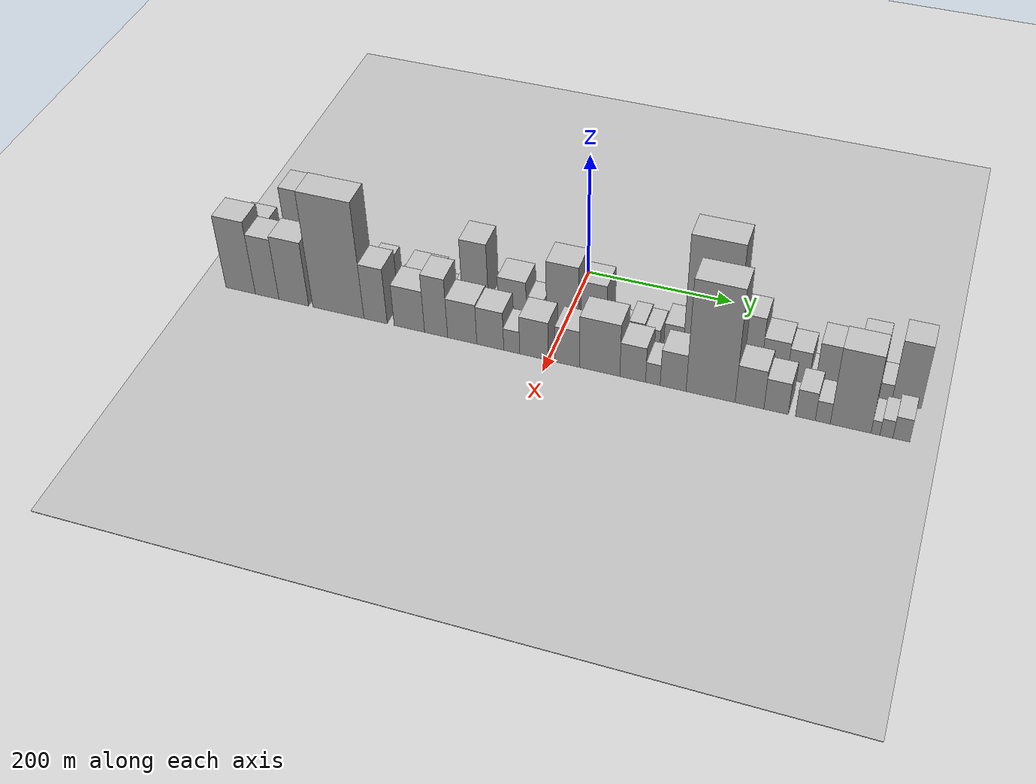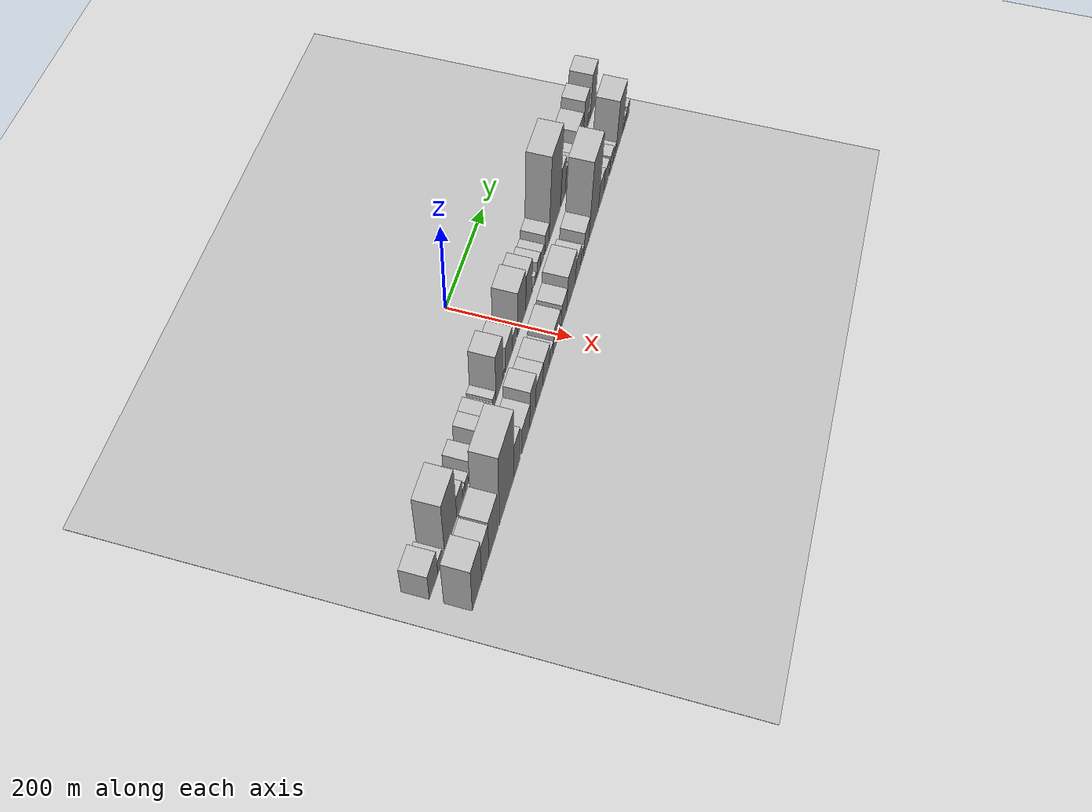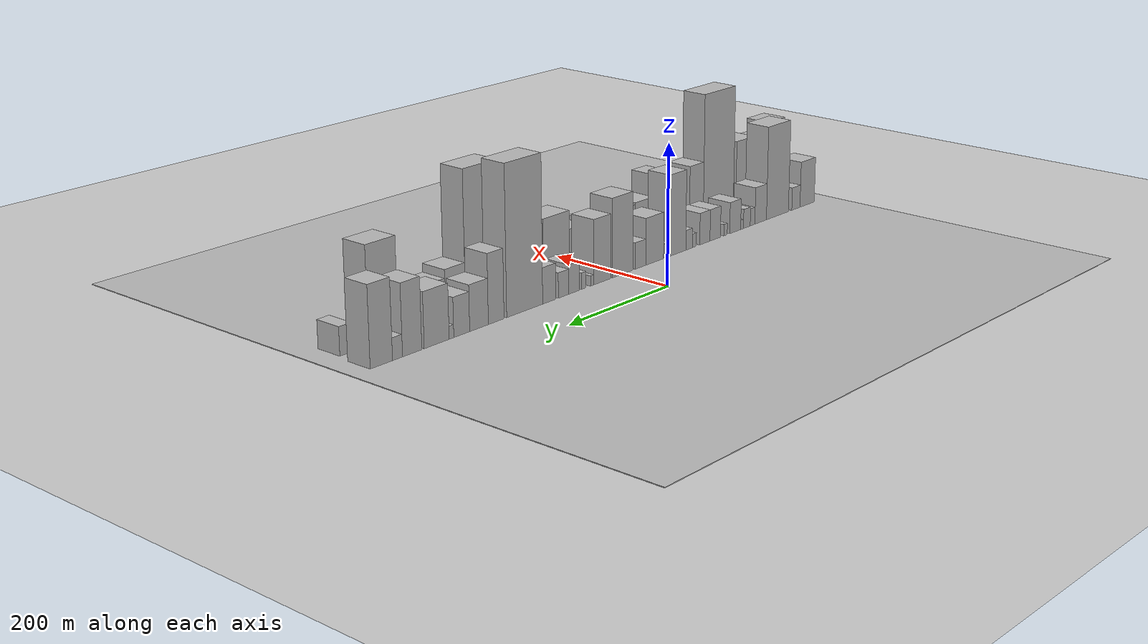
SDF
<sdf version="1.6">
 <world name="default">
  <include><name>ground_plane_1</name><uri>model://HANNAS_ground_plane</uri></include>
  <include>
   <name>ground_plane_2</name>
   <uri>model://HANNAS_ground_plane</uri>
   <pose>100 0 0  0 0 0</pose>
  </include>
  <model name="building_1">
   <static>1</static>
   <pose>100.0000 -440.9247 0 0.000000 0.000000 0.000000</pose>
   <link name="link">
    <pose>0 0 36.00 0 0 0</pose>
    <collision name="collision"><geometry><box><size>40.0000 38.1506 72.0000</size></box></geometry></collision>
    <visual name="visual">
     <cast_shadows>0</cast_shadows>
     <geometry><box><size>40.0000 38.1506 72.0000</size></box></geometry>
     <material>
      <script>
       <uri>model://HANNAS_wall/materials/scripts</uri>
       <uri>model://HANNAS_wall/materials/textures</uri>
       <name>vrc/HANNAS_wall</name>
      </script>
     </material>
    </visual>
   </link>
  </model>
  <model name="building_2">
   <static>1</static>
   <pose>100.0000 -411.0806 0 0.000000 0.000000 0.000000</pose>
   <link name="link">
    <pose>0 0 18.00 0 0 0</pose>
    <collision name="collision"><geometry><box><size>40.0000 21.5376 36.0000</size></box></geometry></collision>
    <visual name="visual">
     <cast_shadows>0</cast_shadows>
     <geometry><box><size>40.0000 21.5376 36.0000</size></box></geometry>
     <material>
      <script>
       <uri>model://HANNAS_wall/materials/scripts</uri>
       <uri>model://HANNAS_wall/materials/textures</uri>
       <name>vrc/HANNAS_wall</name>
      </script>
     </material>
    </visual>
   </link>
  </model>
  <model name="building_3">
   <static>1</static>
   <pose>100.0000 -363.0573 0 0.000000 0.000000 0.000000</pose>
   <link name="link">
    <pose>0 0 72.00 0 0 0</pose>
    <collision name="collision"><geometry><box><size>40.0000 56.5090 144.0000</size></box></geometry></collision>
    <visual name="visual">
     <cast_shadows>0</cast_shadows>
     <geometry><box><size>40.0000 56.5090 144.0000</size></box></geometry>
     <material>
      <script>
       <uri>model://HANNAS_wall/materials/scripts</uri>
       <uri>model://HANNAS_wall/materials/textures</uri>
       <name>vrc/HANNAS_wall</name>
      </script>
     </material>
    </visual>
   </link>
  </model>
  <model name="building_4">
   <static>1</static>
   <pose>100.0000 -320.2638 0 0.000000 0.000000 0.000000</pose>
   <link name="link">
    <pose>0 0 28.50 0 0 0</pose>
    <collision name="collision"><geometry><box><size>40.0000 29.0781 57.0000</size></box></geometry></collision>
    <visual name="visual">
     <cast_shadows>0</cast_shadows>
     <geometry><box><size>40.0000 29.0781 57.0000</size></box></geometry>
     <material>
      <script>
       <uri>model://HANNAS_wall/materials/scripts</uri>
       <uri>model://HANNAS_wall/materials/textures</uri>
       <name>vrc/HANNAS_wall</name>
      </script>
     </material>
    </visual>
   </link>
  </model>
  <model name="building_5">
   <static>1</static>
   <pose>100.0000 -299.8570 0 0.000000 0.000000 0.000000</pose>
   <link name="link">
    <pose>0 0 13.50 0 0 0</pose>
    <collision name="collision"><geometry><box><size>40.0000 11.7355 27.0000</size></box></geometry></collision>
    <visual name="visual">
     <cast_shadows>0</cast_shadows>
     <geometry><box><size>40.0000 11.7355 27.0000</size></box></geometry>
     <material>
      <script>
       <uri>model://HANNAS_wall/materials/scripts</uri>
       <uri>model://HANNAS_wall/materials/textures</uri>
       <name>vrc/HANNAS_wall</name>
      </script>
     </material>
    </visual>
   </link>
  </model>
  <model name="building_6">
   <static>1</static>
   <pose>100.0000 -285.6848 0 0.000000 0.000000 0.000000</pose>
   <link name="link">
    <pose>0 0 15.00 0 0 0</pose>
    <collision name="collision"><geometry><box><size>40.0000 16.6089 30.0000</size></box></geometry></collision>
    <visual name="visual">
     <cast_shadows>0</cast_shadows>
     <geometry><box><size>40.0000 16.6089 30.0000</size></box></geometry>
     <material>
      <script>
       <uri>model://HANNAS_wall/materials/scripts</uri>
       <uri>model://HANNAS_wall/materials/textures</uri>
       <name>vrc/HANNAS_wall</name>
      </script>
     </material>
    </visual>
   </link>
  </model>
  <model name="building_7">
   <static>1</static>
   <pose>100.0000 -273.8591 0 0.000000 0.000000 0.000000</pose>
   <link name="link">
    <pose>0 0 7.50 0 0 0</pose>
    <collision name="collision"><geometry><box><size>40.0000 7.0425 15.0000</size></box></geometry></collision>
    <visual name="visual">
     <cast_shadows>0</cast_shadows>
     <geometry><box><size>40.0000 7.0425 15.0000</size></box></geometry>
     <material>
      <script>
       <uri>model://HANNAS_wall/materials/scripts</uri>
       <uri>model://HANNAS_wall/materials/textures</uri>
       <name>vrc/HANNAS_wall</name>
      </script>
     </material>
    </visual>
   </link>
  </model>
  <model name="building_8">
   <static>1</static>
   <pose>100.0000 -257.0181 0 0.000000 0.000000 0.000000</pose>
   <link name="link">
    <pose>0 0 24.00 0 0 0</pose>
    <collision name="collision"><geometry><box><size>40.0000 26.6394 48.0000</size></box></geometry></collision>
    <visual name="visual">
     <cast_shadows>0</cast_shadows>
     <geometry><box><size>40.0000 26.6394 48.0000</size></box></geometry>
     <material>
      <script>
       <uri>model://HANNAS_wall/materials/scripts</uri>
       <uri>model://HANNAS_wall/materials/textures</uri>
       <name>vrc/HANNAS_wall</name>
      </script>
     </material>
    </visual>
   </link>
  </model>
  <model name="building_9">
   <static>1</static>
   <pose>100.0000 -233.5520 0 0.000000 0.000000 0.000000</pose>
   <link name="link">
    <pose>0 0 9.00 0 0 0</pose>
    <collision name="collision"><geometry><box><size>40.0000 8.2930 18.0000</size></box></geometry></collision>
    <visual name="visual">
     <cast_shadows>0</cast_shadows>
     <geometry><box><size>40.0000 8.2930 18.0000</size></box></geometry>
     <material>
      <script>
       <uri>model://HANNAS_wall/materials/scripts</uri>
       <uri>model://HANNAS_wall/materials/textures</uri>
       <name>vrc/HANNAS_wall</name>
      </script>
     </material>
    </visual>
   </link>
  </model>
  <model name="building_10">
   <static>1</static>
   <pose>100.0000 -208.8755 0 0.000000 0.000000 0.000000</pose>
   <link name="link">
    <pose>0 0 24.00 0 0 0</pose>
    <collision name="collision"><geometry><box><size>40.0000 25.0599 48.0000</size></box></geometry></collision>
    <visual name="visual">
     <cast_shadows>0</cast_shadows>
     <geometry><box><size>40.0000 25.0599 48.0000</size></box></geometry>
     <material>
      <script>
       <uri>model://HANNAS_wall/materials/scripts</uri>
       <uri>model://HANNAS_wall/materials/textures</uri>
       <name>vrc/HANNAS_wall</name>
      </script>
     </material>
    </visual>
   </link>
  </model>
  <model name="building_11">
   <static>1</static>
   <pose>100.0000 -184.3408 0 0.000000 0.000000 0.000000</pose>
   <link name="link">
    <pose>0 0 24.00 0 0 0</pose>
    <collision name="collision"><geometry><box><size>40.0000 24.0095 48.0000</size></box></geometry></collision>
    <visual name="visual">
     <cast_shadows>0</cast_shadows>
     <geometry><box><size>40.0000 24.0095 48.0000</size></box></geometry>
     <material>
      <script>
       <uri>model://HANNAS_wall/materials/scripts</uri>
       <uri>model://HANNAS_wall/materials/textures</uri>
       <name>vrc/HANNAS_wall</name>
      </script>
     </material>
    </visual>
   </link>
  </model>
  <model name="building_12">
   <static>1</static>
   <pose>100.0000 -159.7150 0 0.000000 0.000000 0.000000</pose>
   <link name="link">
    <pose>0 0 10.50 0 0 0</pose>
    <collision name="collision"><geometry><box><size>40.0000 9.2420 21.0000</size></box></geometry></collision>
    <visual name="visual">
     <cast_shadows>0</cast_shadows>
     <geometry><box><size>40.0000 9.2420 21.0000</size></box></geometry>
     <material>
      <script>
       <uri>model://HANNAS_wall/materials/scripts</uri>
       <uri>model://HANNAS_wall/materials/textures</uri>
       <name>vrc/HANNAS_wall</name>
      </script>
     </material>
    </visual>
   </link>
  </model>
  <model name="building_13">
   <static>1</static>
   <pose>100.0000 -147.5002 0 0.000000 0.000000 0.000000</pose>
   <link name="link">
    <pose>0 0 15.00 0 0 0</pose>
    <collision name="collision"><geometry><box><size>40.0000 15.1876 30.0000</size></box></geometry></collision>
    <visual name="visual">
     <cast_shadows>0</cast_shadows>
     <geometry><box><size>40.0000 15.1876 30.0000</size></box></geometry>
     <material>
      <script>
       <uri>model://HANNAS_wall/materials/scripts</uri>
       <uri>model://HANNAS_wall/materials/textures</uri>
       <name>vrc/HANNAS_wall</name>
      </script>
     </material>
    </visual>
   </link>
  </model>
  <model name="building_14">
   <static>1</static>
   <pose>100.0000 -121.4377 0 0.000000 0.000000 0.000000</pose>
   <link name="link">
    <pose>0 0 60.00 0 0 0</pose>
    <collision name="collision"><geometry><box><size>40.0000 36.9374 120.0000</size></box></geometry></collision>
    <visual name="visual">
     <cast_shadows>0</cast_shadows>
     <geometry><box><size>40.0000 36.9374 120.0000</size></box></geometry>
     <material>
      <script>
       <uri>model://HANNAS_wall/materials/scripts</uri>
       <uri>model://HANNAS_wall/materials/textures</uri>
       <name>vrc/HANNAS_wall</name>
      </script>
     </material>
    </visual>
   </link>
  </model>
  <model name="building_15">
   <static>1</static>
   <pose>100.0000 -98.6666 0 0.000000 0.000000 0.000000</pose>
   <link name="link">
    <pose>0 0 10.50 0 0 0</pose>
    <collision name="collision"><geometry><box><size>40.0000 8.6048 21.0000</size></box></geometry></collision>
    <visual name="visual">
     <cast_shadows>0</cast_shadows>
     <geometry><box><size>40.0000 8.6048 21.0000</size></box></geometry>
     <material>
      <script>
       <uri>model://HANNAS_wall/materials/scripts</uri>
       <uri>model://HANNAS_wall/materials/textures</uri>
       <name>vrc/HANNAS_wall</name>
      </script>
     </material>
    </visual>
   </link>
  </model>
  <model name="building_16">
   <static>1</static>
   <pose>100.0000 -69.6696 0 0.000000 0.000000 0.000000</pose>
   <link name="link">
    <pose>0 0 34.50 0 0 0</pose>
    <collision name="collision"><geometry><box><size>40.0000 39.3892 69.0000</size></box></geometry></collision>
    <visual name="visual">
     <cast_shadows>0</cast_shadows>
     <geometry><box><size>40.0000 39.3892 69.0000</size></box></geometry>
     <material>
      <script>
       <uri>model://HANNAS_wall/materials/scripts</uri>
       <uri>model://HANNAS_wall/materials/textures</uri>
       <name>vrc/HANNAS_wall</name>
      </script>
     </material>
    </visual>
   </link>
  </model>
  <model name="building_17">
   <static>1</static>
   <pose>100.0000 -38.5593 0 0.000000 0.000000 0.000000</pose>
   <link name="link">
    <pose>0 0 19.50 0 0 0</pose>
    <collision name="collision"><geometry><box><size>40.0000 22.8314 39.0000</size></box></geometry></collision>
    <visual name="visual">
     <cast_shadows>0</cast_shadows>
     <geometry><box><size>40.0000 22.8314 39.0000</size></box></geometry>
     <material>
      <script>
       <uri>model://HANNAS_wall/materials/scripts</uri>
       <uri>model://HANNAS_wall/materials/textures</uri>
       <name>vrc/HANNAS_wall</name>
      </script>
     </material>
    </visual>
   </link>
  </model>
  <model name="building_18">
   <static>1</static>
   <pose>100.0000 -0.0419 0 0.000000 0.000000 0.000000</pose>
   <link name="link">
    <pose>0 0 57.00 0 0 0</pose>
    <collision name="collision"><geometry><box><size>40.0000 44.2033 114.0000</size></box></geometry></collision>
    <visual name="visual">
     <cast_shadows>0</cast_shadows>
     <geometry><box><size>40.0000 44.2033 114.0000</size></box></geometry>
     <material>
      <script>
       <uri>model://HANNAS_wall/materials/scripts</uri>
       <uri>model://HANNAS_wall/materials/textures</uri>
       <name>vrc/HANNAS_wall</name>
      </script>
     </material>
    </visual>
   </link>
  </model>
  <model name="building_19">
   <static>1</static>
   <pose>100.0000 42.6761 0 0.000000 0.000000 0.000000</pose>
   <link name="link">
    <pose>0 0 46.50 0 0 0</pose>
    <collision name="collision"><geometry><box><size>40.0000 35.2327 93.0000</size></box></geometry></collision>
    <visual name="visual">
     <cast_shadows>0</cast_shadows>
     <geometry><box><size>40.0000 35.2327 93.0000</size></box></geometry>
     <material>
      <script>
       <uri>model://HANNAS_wall/materials/scripts</uri>
       <uri>model://HANNAS_wall/materials/textures</uri>
       <name>vrc/HANNAS_wall</name>
      </script>
     </material>
    </visual>
   </link>
  </model>
  <model name="building_20">
   <static>1</static>
   <pose>100.0000 63.8272 0 0.000000 0.000000 0.000000</pose>
   <link name="link">
    <pose>0 0 7.50 0 0 0</pose>
    <collision name="collision"><geometry><box><size>40.0000 7.0696 15.0000</size></box></geometry></collision>
    <visual name="visual">
     <cast_shadows>0</cast_shadows>
     <geometry><box><size>40.0000 7.0696 15.0000</size></box></geometry>
     <material>
      <script>
       <uri>model://HANNAS_wall/materials/scripts</uri>
       <uri>model://HANNAS_wall/materials/textures</uri>
       <name>vrc/HANNAS_wall</name>
      </script>
     </material>
    </visual>
   </link>
  </model>
  <model name="building_21">
   <static>1</static>
   <pose>100.0000 81.3237 0 0.000000 0.000000 0.000000</pose>
   <link name="link">
    <pose>0 0 12.00 0 0 0</pose>
    <collision name="collision"><geometry><box><size>40.0000 9.9235 24.0000</size></box></geometry></collision>
    <visual name="visual">
     <cast_shadows>0</cast_shadows>
     <geometry><box><size>40.0000 9.9235 24.0000</size></box></geometry>
     <material>
      <script>
       <uri>model://HANNAS_wall/materials/scripts</uri>
       <uri>model://HANNAS_wall/materials/textures</uri>
       <name>vrc/HANNAS_wall</name>
      </script>
     </material>
    </visual>
   </link>
  </model>
  <model name="building_22">
   <static>1</static>
   <pose>100.0000 100.9918 0 0.000000 0.000000 0.000000</pose>
   <link name="link">
    <pose>0 0 21.00 0 0 0</pose>
    <collision name="collision"><geometry><box><size>40.0000 21.4125 42.0000</size></box></geometry></collision>
    <visual name="visual">
     <cast_shadows>0</cast_shadows>
     <geometry><box><size>40.0000 21.4125 42.0000</size></box></geometry>
     <material>
      <script>
       <uri>model://HANNAS_wall/materials/scripts</uri>
       <uri>model://HANNAS_wall/materials/textures</uri>
       <name>vrc/HANNAS_wall</name>
      </script>
     </material>
    </visual>
   </link>
  </model>
  <model name="building_23">
   <static>1</static>
   <pose>100.0000 122.0115 0 0.000000 0.000000 0.000000</pose>
   <link name="link">
    <pose>0 0 18.00 0 0 0</pose>
    <collision name="collision"><geometry><box><size>40.0000 20.6270 36.0000</size></box></geometry></collision>
    <visual name="visual">
     <cast_shadows>0</cast_shadows>
     <geometry><box><size>40.0000 20.6270 36.0000</size></box></geometry>
     <material>
      <script>
       <uri>model://HANNAS_wall/materials/scripts</uri>
       <uri>model://HANNAS_wall/materials/textures</uri>
       <name>vrc/HANNAS_wall</name>
      </script>
     </material>
    </visual>
   </link>
  </model>
  <model name="building_24">
   <static>1</static>
   <pose>100.0000 150.2612 0 0.000000 0.000000 0.000000</pose>
   <link name="link">
    <pose>0 0 25.50 0 0 0</pose>
    <collision name="collision"><geometry><box><size>40.0000 25.8724 51.0000</size></box></geometry></collision>
    <visual name="visual">
     <cast_shadows>0</cast_shadows>
     <geometry><box><size>40.0000 25.8724 51.0000</size></box></geometry>
     <material>
      <script>
       <uri>model://HANNAS_wall/materials/scripts</uri>
       <uri>model://HANNAS_wall/materials/textures</uri>
       <name>vrc/HANNAS_wall</name>
      </script>
     </material>
    </visual>
   </link>
  </model>
  <model name="building_25">
   <static>1</static>
   <pose>100.0000 197.5591 0 0.000000 0.000000 0.000000</pose>
   <link name="link">
    <pose>0 0 103.50 0 0 0</pose>
    <collision name="collision"><geometry><box><size>40.0000 68.7232 207.0000</size></box></geometry></collision>
    <visual name="visual">
     <cast_shadows>0</cast_shadows>
     <geometry><box><size>40.0000 68.7232 207.0000</size></box></geometry>
     <material>
      <script>
       <uri>model://HANNAS_wall/materials/scripts</uri>
       <uri>model://HANNAS_wall/materials/textures</uri>
       <name>vrc/HANNAS_wall</name>
      </script>
     </material>
    </visual>
   </link>
  </model>
  <model name="building_26">
   <static>1</static>
   <pose>100.0000 251.4373 0 0.000000 0.000000 0.000000</pose>
   <link name="link">
    <pose>0 0 48.00 0 0 0</pose>
    <collision name="collision"><geometry><box><size>40.0000 29.0332 96.0000</size></box></geometry></collision>
    <visual name="visual">
     <cast_shadows>0</cast_shadows>
     <geometry><box><size>40.0000 29.0332 96.0000</size></box></geometry>
     <material>
      <script>
       <uri>model://HANNAS_wall/materials/scripts</uri>
       <uri>model://HANNAS_wall/materials/textures</uri>
       <name>vrc/HANNAS_wall</name>
      </script>
     </material>
    </visual>
   </link>
  </model>
  <model name="building_27">
   <static>1</static>
   <pose>100.0000 282.9380 0 0.000000 0.000000 0.000000</pose>
   <link name="link">
    <pose>0 0 31.50 0 0 0</pose>
    <collision name="collision"><geometry><box><size>40.0000 33.9682 63.0000</size></box></geometry></collision>
    <visual name="visual">
     <cast_shadows>0</cast_shadows>
     <geometry><box><size>40.0000 33.9682 63.0000</size></box></geometry>
     <material>
      <script>
       <uri>model://HANNAS_wall/materials/scripts</uri>
       <uri>model://HANNAS_wall/materials/textures</uri>
       <name>vrc/HANNAS_wall</name>
      </script>
     </material>
    </visual>
   </link>
  </model>
  <model name="building_28">
   <static>1</static>
   <pose>100.0000 314.1191 0 0.000000 0.000000 0.000000</pose>
   <link name="link">
    <pose>0 0 27.00 0 0 0</pose>
    <collision name="collision"><geometry><box><size>40.0000 28.3941 54.0000</size></box></geometry></collision>
    <visual name="visual">
     <cast_shadows>0</cast_shadows>
     <geometry><box><size>40.0000 28.3941 54.0000</size></box></geometry>
     <material>
      <script>
       <uri>model://HANNAS_wall/materials/scripts</uri>
       <uri>model://HANNAS_wall/materials/textures</uri>
       <name>vrc/HANNAS_wall</name>
      </script>
     </material>
    </visual>
   </link>
  </model>
  <model name="building_29">
   <static>1</static>
   <pose>100.0000 332.3941 0 0.000000 0.000000 0.000000</pose>
   <link name="link">
    <pose>0 0 9.00 0 0 0</pose>
    <collision name="collision"><geometry><box><size>40.0000 8.1560 18.0000</size></box></geometry></collision>
    <visual name="visual">
     <cast_shadows>0</cast_shadows>
     <geometry><box><size>40.0000 8.1560 18.0000</size></box></geometry>
     <material>
      <script>
       <uri>model://HANNAS_wall/materials/scripts</uri>
       <uri>model://HANNAS_wall/materials/textures</uri>
       <name>vrc/HANNAS_wall</name>
      </script>
     </material>
    </visual>
   </link>
  </model>
  <model name="building_30">
   <static>1</static>
   <pose>100.0000 358.2332 0 0.000000 0.000000 0.000000</pose>
   <link name="link">
    <pose>0 0 37.50 0 0 0</pose>
    <collision name="collision"><geometry><box><size>40.0000 43.5221 75.0000</size></box></geometry></collision>
    <visual name="visual">
     <cast_shadows>0</cast_shadows>
     <geometry><box><size>40.0000 43.5221 75.0000</size></box></geometry>
     <material>
      <script>
       <uri>model://HANNAS_wall/materials/scripts</uri>
       <uri>model://HANNAS_wall/materials/textures</uri>
       <name>vrc/HANNAS_wall</name>
      </script>
     </material>
    </visual>
   </link>
  </model>
  <model name="building_31">
   <static>1</static>
   <pose>100.0000 400.3645 0 0.000000 0.000000 0.000000</pose>
   <link name="link">
    <pose>0 0 48.00 0 0 0</pose>
    <collision name="collision"><geometry><box><size>40.0000 32.7405 96.0000</size></box></geometry></collision>
    <visual name="visual">
     <cast_shadows>0</cast_shadows>
     <geometry><box><size>40.0000 32.7405 96.0000</size></box></geometry>
     <material>
      <script>
       <uri>model://HANNAS_wall/materials/scripts</uri>
       <uri>model://HANNAS_wall/materials/textures</uri>
       <name>vrc/HANNAS_wall</name>
      </script>
     </material>
    </visual>
   </link>
  </model>
  <model name="building_32">
   <static>1</static>
   <pose>100.0000 425.0963 0 0.000000 0.000000 0.000000</pose>
   <link name="link">
    <pose>0 0 15.00 0 0 0</pose>
    <collision name="collision"><geometry><box><size>40.0000 16.7232 30.0000</size></box></geometry></collision>
    <visual name="visual">
     <cast_shadows>0</cast_shadows>
     <geometry><box><size>40.0000 16.7232 30.0000</size></box></geometry>
     <material>
      <script>
       <uri>model://HANNAS_wall/materials/scripts</uri>
       <uri>model://HANNAS_wall/materials/textures</uri>
       <name>vrc/HANNAS_wall</name>
      </script>
     </material>
    </visual>
   </link>
  </model>
  <model name="building_33">
   <static>1</static>
   <pose>100.0000 451.8115 0 0.000000 0.000000 0.000000</pose>
   <link name="link">
    <pose>0 0 54.00 0 0 0</pose>
    <collision name="collision"><geometry><box><size>40.0000 36.7071 108.0000</size></box></geometry></collision>
    <visual name="visual">
     <cast_shadows>0</cast_shadows>
     <geometry><box><size>40.0000 36.7071 108.0000</size></box></geometry>
     <material>
      <script>
       <uri>model://HANNAS_wall/materials/scripts</uri>
       <uri>model://HANNAS_wall/materials/textures</uri>
       <name>vrc/HANNAS_wall</name>
      </script>
     </material>
    </visual>
   </link>
  </model>
  <model name="building_34">
   <static>1</static>
   <pose>160.0000 -438.0723 0 0.000000 0.000000 0.000000</pose>
   <link name="link">
    <pose>0 0 63.00 0 0 0</pose>
    <collision name="collision"><geometry><box><size>40.0000 43.8555 126.0000</size></box></geometry></collision>
    <visual name="visual">
     <cast_shadows>0</cast_shadows>
     <geometry><box><size>40.0000 43.8555 126.0000</size></box></geometry>
     <material>
      <script>
       <uri>model://HANNAS_wall/materials/scripts</uri>
       <uri>model://HANNAS_wall/materials/textures</uri>
       <name>vrc/HANNAS_wall</name>
      </script>
     </material>
    </visual>
   </link>
  </model>
  <model name="building_35">
   <static>1</static>
   <pose>160.0000 -398.7327 0 0.000000 0.000000 0.000000</pose>
   <link name="link">
    <pose>0 0 52.50 0 0 0</pose>
    <collision name="collision"><geometry><box><size>40.0000 34.8236 105.0000</size></box></geometry></collision>
    <visual name="visual">
     <cast_shadows>0</cast_shadows>
     <geometry><box><size>40.0000 34.8236 105.0000</size></box></geometry>
     <material>
      <script>
       <uri>model://HANNAS_wall/materials/scripts</uri>
       <uri>model://HANNAS_wall/materials/textures</uri>
       <name>vrc/HANNAS_wall</name>
      </script>
     </material>
    </visual>
   </link>
  </model>
  <model name="building_36">
   <static>1</static>
   <pose>160.0000 -359.4215 0 0.000000 0.000000 0.000000</pose>
   <link name="link">
    <pose>0 0 55.50 0 0 0</pose>
    <collision name="collision"><geometry><box><size>40.0000 43.7990 111.0000</size></box></geometry></collision>
    <visual name="visual">
     <cast_shadows>0</cast_shadows>
     <geometry><box><size>40.0000 43.7990 111.0000</size></box></geometry>
     <material>
      <script>
       <uri>model://HANNAS_wall/materials/scripts</uri>
       <uri>model://HANNAS_wall/materials/textures</uri>
       <name>vrc/HANNAS_wall</name>
      </script>
     </material>
    </visual>
   </link>
  </model>
  <model name="building_37">
   <static>1</static>
   <pose>160.0000 -294.4784 0 0.000000 0.000000 0.000000</pose>
   <link name="link">
    <pose>0 0 99.00 0 0 0</pose>
    <collision name="collision"><geometry><box><size>40.0000 74.0872 198.0000</size></box></geometry></collision>
    <visual name="visual">
     <cast_shadows>0</cast_shadows>
     <geometry><box><size>40.0000 74.0872 198.0000</size></box></geometry>
     <material>
      <script>
       <uri>model://HANNAS_wall/materials/scripts</uri>
       <uri>model://HANNAS_wall/materials/textures</uri>
       <name>vrc/HANNAS_wall</name>
      </script>
     </material>
    </visual>
   </link>
  </model>
  <model name="building_38">
   <static>1</static>
   <pose>160.0000 -240.7812 0 0.000000 0.000000 0.000000</pose>
   <link name="link">
    <pose>0 0 48.00 0 0 0</pose>
    <collision name="collision"><geometry><box><size>40.0000 33.3072 96.0000</size></box></geometry></collision>
    <visual name="visual">
     <cast_shadows>0</cast_shadows>
     <geometry><box><size>40.0000 33.3072 96.0000</size></box></geometry>
     <material>
      <script>
       <uri>model://HANNAS_wall/materials/scripts</uri>
       <uri>model://HANNAS_wall/materials/textures</uri>
       <name>vrc/HANNAS_wall</name>
      </script>
     </material>
    </visual>
   </link>
  </model>
  <model name="building_39">
   <static>1</static>
   <pose>160.0000 -192.6408 0 0.000000 0.000000 0.000000</pose>
   <link name="link">
    <pose>0 0 36.00 0 0 0</pose>
    <collision name="collision"><geometry><box><size>40.0000 42.9735 72.0000</size></box></geometry></collision>
    <visual name="visual">
     <cast_shadows>0</cast_shadows>
     <geometry><box><size>40.0000 42.9735 72.0000</size></box></geometry>
     <material>
      <script>
       <uri>model://HANNAS_wall/materials/scripts</uri>
       <uri>model://HANNAS_wall/materials/textures</uri>
       <name>vrc/HANNAS_wall</name>
      </script>
     </material>
    </visual>
   </link>
  </model>
  <model name="building_40">
   <static>1</static>
   <pose>160.0000 -154.9456 0 0.000000 0.000000 0.000000</pose>
   <link name="link">
    <pose>0 0 51.00 0 0 0</pose>
    <collision name="collision"><geometry><box><size>40.0000 32.4169 102.0000</size></box></geometry></collision>
    <visual name="visual">
     <cast_shadows>0</cast_shadows>
     <geometry><box><size>40.0000 32.4169 102.0000</size></box></geometry>
     <material>
      <script>
       <uri>model://HANNAS_wall/materials/scripts</uri>
       <uri>model://HANNAS_wall/materials/textures</uri>
       <name>vrc/HANNAS_wall</name>
      </script>
     </material>
    </visual>
   </link>
  </model>
  <model name="building_41">
   <static>1</static>
   <pose>160.0000 -118.4255 0 0.000000 0.000000 0.000000</pose>
   <link name="link">
    <pose>0 0 34.50 0 0 0</pose>
    <collision name="collision"><geometry><box><size>40.0000 40.6232 69.0000</size></box></geometry></collision>
    <visual name="visual">
     <cast_shadows>0</cast_shadows>
     <geometry><box><size>40.0000 40.6232 69.0000</size></box></geometry>
     <material>
      <script>
       <uri>model://HANNAS_wall/materials/scripts</uri>
       <uri>model://HANNAS_wall/materials/textures</uri>
       <name>vrc/HANNAS_wall</name>
      </script>
     </material>
    </visual>
   </link>
  </model>
  <model name="building_42">
   <static>1</static>
   <pose>160.0000 -79.5098 0 0.000000 0.000000 0.000000</pose>
   <link name="link">
    <pose>0 0 33.00 0 0 0</pose>
    <collision name="collision"><geometry><box><size>40.0000 37.2081 66.0000</size></box></geometry></collision>
    <visual name="visual">
     <cast_shadows>0</cast_shadows>
     <geometry><box><size>40.0000 37.2081 66.0000</size></box></geometry>
     <material>
      <script>
       <uri>model://HANNAS_wall/materials/scripts</uri>
       <uri>model://HANNAS_wall/materials/textures</uri>
       <name>vrc/HANNAS_wall</name>
      </script>
     </material>
    </visual>
   </link>
  </model>
  <model name="building_43">
   <static>1</static>
   <pose>160.0000 -49.9615 0 0.000000 0.000000 0.000000</pose>
   <link name="link">
    <pose>0 0 19.50 0 0 0</pose>
    <collision name="collision"><geometry><box><size>40.0000 21.8887 39.0000</size></box></geometry></collision>
    <visual name="visual">
     <cast_shadows>0</cast_shadows>
     <geometry><box><size>40.0000 21.8887 39.0000</size></box></geometry>
     <material>
      <script>
       <uri>model://HANNAS_wall/materials/scripts</uri>
       <uri>model://HANNAS_wall/materials/textures</uri>
       <name>vrc/HANNAS_wall</name>
      </script>
     </material>
    </visual>
   </link>
  </model>
  <model name="building_44">
   <static>1</static>
   <pose>160.0000 -19.4931 0 0.000000 0.000000 0.000000</pose>
   <link name="link">
    <pose>0 0 33.00 0 0 0</pose>
    <collision name="collision"><geometry><box><size>40.0000 39.0480 66.0000</size></box></geometry></collision>
    <visual name="visual">
     <cast_shadows>0</cast_shadows>
     <geometry><box><size>40.0000 39.0480 66.0000</size></box></geometry>
     <material>
      <script>
       <uri>model://HANNAS_wall/materials/scripts</uri>
       <uri>model://HANNAS_wall/materials/textures</uri>
       <name>vrc/HANNAS_wall</name>
      </script>
     </material>
    </visual>
   </link>
  </model>
  <model name="building_45">
   <static>1</static>
   <pose>160.0000 25.5514 0 0.000000 0.000000 0.000000</pose>
   <link name="link">
    <pose>0 0 31.50 0 0 0</pose>
    <collision name="collision"><geometry><box><size>40.0000 33.0409 63.0000</size></box></geometry></collision>
    <visual name="visual">
     <cast_shadows>0</cast_shadows>
     <geometry><box><size>40.0000 33.0409 63.0000</size></box></geometry>
     <material>
      <script>
       <uri>model://HANNAS_wall/materials/scripts</uri>
       <uri>model://HANNAS_wall/materials/textures</uri>
       <name>vrc/HANNAS_wall</name>
      </script>
     </material>
    </visual>
   </link>
  </model>
  <model name="building_46">
   <static>1</static>
   <pose>160.0000 69.0283 0 0.000000 0.000000 0.000000</pose>
   <link name="link">
    <pose>0 0 45.00 0 0 0</pose>
    <collision name="collision"><geometry><box><size>40.0000 53.9130 90.0000</size></box></geometry></collision>
    <visual name="visual">
     <cast_shadows>0</cast_shadows>
     <geometry><box><size>40.0000 53.9130 90.0000</size></box></geometry>
     <material>
      <script>
       <uri>model://HANNAS_wall/materials/scripts</uri>
       <uri>model://HANNAS_wall/materials/textures</uri>
       <name>vrc/HANNAS_wall</name>
      </script>
     </material>
    </visual>
   </link>
  </model>
  <model name="building_47">
   <static>1</static>
   <pose>160.0000 112.9951 0 0.000000 0.000000 0.000000</pose>
   <link name="link">
    <pose>0 0 30.00 0 0 0</pose>
    <collision name="collision"><geometry><box><size>40.0000 34.0206 60.0000</size></box></geometry></collision>
    <visual name="visual">
     <cast_shadows>0</cast_shadows>
     <geometry><box><size>40.0000 34.0206 60.0000</size></box></geometry>
     <material>
      <script>
       <uri>model://HANNAS_wall/materials/scripts</uri>
       <uri>model://HANNAS_wall/materials/textures</uri>
       <name>vrc/HANNAS_wall</name>
      </script>
     </material>
    </visual>
   </link>
  </model>
  <model name="building_48">
   <static>1</static>
   <pose>160.0000 139.6065 0 0.000000 0.000000 0.000000</pose>
   <link name="link">
    <pose>0 0 18.00 0 0 0</pose>
    <collision name="collision"><geometry><box><size>40.0000 19.2022 36.0000</size></box></geometry></collision>
    <visual name="visual">
     <cast_shadows>0</cast_shadows>
     <geometry><box><size>40.0000 19.2022 36.0000</size></box></geometry>
     <material>
      <script>
       <uri>model://HANNAS_wall/materials/scripts</uri>
       <uri>model://HANNAS_wall/materials/textures</uri>
       <name>vrc/HANNAS_wall</name>
      </script>
     </material>
    </visual>
   </link>
  </model>
  <model name="building_49">
   <static>1</static>
   <pose>160.0000 166.1007 0 0.000000 0.000000 0.000000</pose>
   <link name="link">
    <pose>0 0 31.50 0 0 0</pose>
    <collision name="collision"><geometry><box><size>40.0000 33.7862 63.0000</size></box></geometry></collision>
    <visual name="visual">
     <cast_shadows>0</cast_shadows>
     <geometry><box><size>40.0000 33.7862 63.0000</size></box></geometry>
     <material>
      <script>
       <uri>model://HANNAS_wall/materials/scripts</uri>
       <uri>model://HANNAS_wall/materials/textures</uri>
       <name>vrc/HANNAS_wall</name>
      </script>
     </material>
    </visual>
   </link>
  </model>
  <model name="building_50">
   <static>1</static>
   <pose>160.0000 214.7010 0 0.000000 0.000000 0.000000</pose>
   <link name="link">
    <pose>0 0 96.00 0 0 0</pose>
    <collision name="collision"><geometry><box><size>40.0000 63.4144 192.0000</size></box></geometry></collision>
    <visual name="visual">
     <cast_shadows>0</cast_shadows>
     <geometry><box><size>40.0000 63.4144 192.0000</size></box></geometry>
     <material>
      <script>
       <uri>model://HANNAS_wall/materials/scripts</uri>
       <uri>model://HANNAS_wall/materials/textures</uri>
       <name>vrc/HANNAS_wall</name>
      </script>
     </material>
    </visual>
   </link>
  </model>
  <model name="building_51">
   <static>1</static>
   <pose>160.0000 264.8118 0 0.000000 0.000000 0.000000</pose>
   <link name="link">
    <pose>0 0 33.00 0 0 0</pose>
    <collision name="collision"><geometry><box><size>40.0000 36.8072 66.0000</size></box></geometry></collision>
    <visual name="visual">
     <cast_shadows>0</cast_shadows>
     <geometry><box><size>40.0000 36.8072 66.0000</size></box></geometry>
     <material>
      <script>
       <uri>model://HANNAS_wall/materials/scripts</uri>
       <uri>model://HANNAS_wall/materials/textures</uri>
       <name>vrc/HANNAS_wall</name>
      </script>
     </material>
    </visual>
   </link>
  </model>
  <model name="building_52">
   <static>1</static>
   <pose>160.0000 298.6824 0 0.000000 0.000000 0.000000</pose>
   <link name="link">
    <pose>0 0 27.00 0 0 0</pose>
    <collision name="collision"><geometry><box><size>40.0000 30.9341 54.0000</size></box></geometry></collision>
    <visual name="visual">
     <cast_shadows>0</cast_shadows>
     <geometry><box><size>40.0000 30.9341 54.0000</size></box></geometry>
     <material>
      <script>
       <uri>model://HANNAS_wall/materials/scripts</uri>
       <uri>model://HANNAS_wall/materials/textures</uri>
       <name>vrc/HANNAS_wall</name>
      </script>
     </material>
    </visual>
   </link>
  </model>
  <model name="building_53">
   <static>1</static>
   <pose>160.0000 335.6114 0 0.000000 0.000000 0.000000</pose>
   <link name="link">
    <pose>0 0 24.00 0 0 0</pose>
    <collision name="collision"><geometry><box><size>40.0000 24.9239 48.0000</size></box></geometry></collision>
    <visual name="visual">
     <cast_shadows>0</cast_shadows>
     <geometry><box><size>40.0000 24.9239 48.0000</size></box></geometry>
     <material>
      <script>
       <uri>model://HANNAS_wall/materials/scripts</uri>
       <uri>model://HANNAS_wall/materials/textures</uri>
       <name>vrc/HANNAS_wall</name>
      </script>
     </material>
    </visual>
   </link>
  </model>
  <model name="building_54">
   <static>1</static>
   <pose>160.0000 357.4072 0 0.000000 0.000000 0.000000</pose>
   <link name="link">
    <pose>0 0 18.00 0 0 0</pose>
    <collision name="collision"><geometry><box><size>40.0000 18.6676 36.0000</size></box></geometry></collision>
    <visual name="visual">
     <cast_shadows>0</cast_shadows>
     <geometry><box><size>40.0000 18.6676 36.0000</size></box></geometry>
     <material>
      <script>
       <uri>model://HANNAS_wall/materials/scripts</uri>
       <uri>model://HANNAS_wall/materials/textures</uri>
       <name>vrc/HANNAS_wall</name>
      </script>
     </material>
    </visual>
   </link>
  </model>
  <model name="building_55">
   <static>1</static>
   <pose>160.0000 392.0311 0 0.000000 0.000000 0.000000</pose>
   <link name="link">
    <pose>0 0 66.00 0 0 0</pose>
    <collision name="collision"><geometry><box><size>40.0000 50.5803 132.0000</size></box></geometry></collision>
    <visual name="visual">
     <cast_shadows>0</cast_shadows>
     <geometry><box><size>40.0000 50.5803 132.0000</size></box></geometry>
     <material>
      <script>
       <uri>model://HANNAS_wall/materials/scripts</uri>
       <uri>model://HANNAS_wall/materials/textures</uri>
       <name>vrc/HANNAS_wall</name>
      </script>
     </material>
    </visual>
   </link>
  </model>
  <model name="building_56">
   <static>1</static>
   <pose>160.0000 422.8640 0 0.000000 0.000000 0.000000</pose>
   <link name="link">
    <pose>0 0 12.00 0 0 0</pose>
    <collision name="collision"><geometry><box><size>40.0000 11.0853 24.0000</size></box></geometry></collision>
    <visual name="visual">
     <cast_shadows>0</cast_shadows>
     <geometry><box><size>40.0000 11.0853 24.0000</size></box></geometry>
     <material>
      <script>
       <uri>model://HANNAS_wall/materials/scripts</uri>
       <uri>model://HANNAS_wall/materials/textures</uri>
       <name>vrc/HANNAS_wall</name>
      </script>
     </material>
    </visual>
   </link>
  </model>
  <model name="building_57">
   <static>1</static>
   <pose>160.0000 436.3122 0 0.000000 0.000000 0.000000</pose>
   <link name="link">
    <pose>0 0 15.00 0 0 0</pose>
    <collision name="collision"><geometry><box><size>40.0000 15.8112 30.0000</size></box></geometry></collision>
    <visual name="visual">
     <cast_shadows>0</cast_shadows>
     <geometry><box><size>40.0000 15.8112 30.0000</size></box></geometry>
     <material>
      <script>
       <uri>model://HANNAS_wall/materials/scripts</uri>
       <uri>model://HANNAS_wall/materials/textures</uri>
       <name>vrc/HANNAS_wall</name>
      </script>
     </material>
    </visual>
   </link>
  </model>
  <model name="building_58">
   <static>1</static>
   <pose>160.0000 454.5589 0 0.000000 0.000000 0.000000</pose>
   <link name="link">
    <pose>0 0 19.50 0 0 0</pose>
    <collision name="collision"><geometry><box><size>40.0000 20.6822 39.0000</size></box></geometry></collision>
    <visual name="visual">
     <cast_shadows>0</cast_shadows>
     <geometry><box><size>40.0000 20.6822 39.0000</size></box></geometry>
     <material>
      <script>
       <uri>model://HANNAS_wall/materials/scripts</uri>
       <uri>model://HANNAS_wall/materials/textures</uri>
       <name>vrc/HANNAS_wall</name>
      </script>
     </material>
    </visual>
   </link>
  </model>
 </world>
</sdf>
